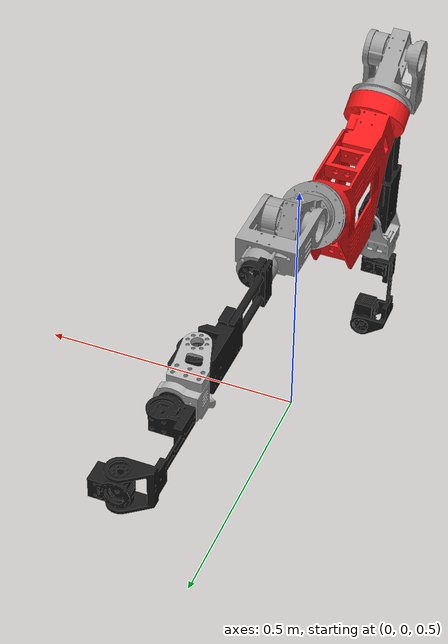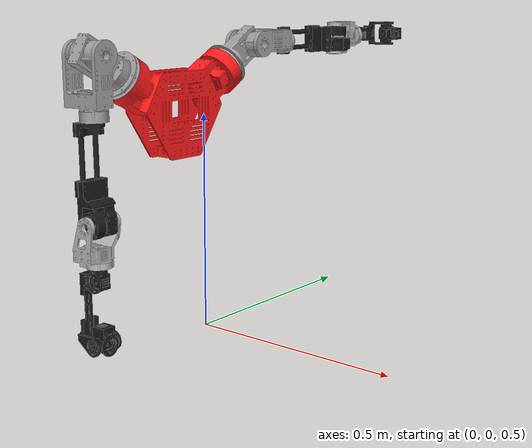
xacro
<?xml version="1.0"?>
<robot xmlns:xacro="http://www.ros.org/wiki/xacro" name="rx1">

  <link name="base_link"/>

  <joint name="torso_base_joint" type="fixed">
    <origin rpy="${-pi/2} 0 ${pi/2}" xyz="-0.08 -0.01 1.0"/>
    <parent link="base_link"/>
    <child link="torso_link"/>
  </joint>

  <xacro:include filename="$(find rx1_arm_description)/xacro/arm_assembly.xacro"/>

</robot>

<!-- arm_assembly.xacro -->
<robot
  name="rx1_arm_description">
  <link
    name="torso_link">
    <inertial>
      <origin
        xyz="0 0 0"
        rpy="0 0 0" />
      <mass
        value="1.34289684822909" />
      <inertia
        ixx="0.0021852497910165"
        ixy="3.17878121171959E-10"
        ixz="-1.17585955037938E-06"
        iyy="0.00327147535237094"
        iyz="4.88930871512921E-06"
        izz="0.00232430919464608" />
    </inertial>
    <visual>
      <origin
        xyz="-0.009 0.6 0.075"
        rpy="0 0 0" />
      <geometry>
        <mesh
          filename="package://rx1_arm_description/meshes/torso_link.STL" />
      </geometry>
      <material
        name="">
        <color
          rgba="1.0 0.1 0.1 1" />
      </material>
    </visual>
    <collision>
      <origin
        xyz="-0.009 0.6 0.075"
        rpy="0 0 0" />
      <geometry>
        <mesh
          filename="package://rx1_arm_description/meshes/torso_link.STL" />
      </geometry>
    </collision>
  </link>
  <link
    name="left_shoulder_link">
    <inertial>
      <origin
        xyz="0 0 0"
        rpy="0 0 0" />
      <mass
        value="0.288652258668412" />
      <inertia
        ixx="0.000234306504757691"
        ixy="6.23188375486991E-11"
        ixz="2.51948775434514E-10"
        iyy="0.000298837549514291"
        iyz="-2.52641885619247E-07"
        izz="0.000256307384405807" />
    </inertial>
    <visual>
      <origin
        xyz="-0.025 0.025 0"
        rpy="0 0 0" />
      <geometry>
        <mesh
          filename="package://rx1_arm_description/meshes/left_shoulder_link.STL" />
      </geometry>
      <material
        name="">
        <color
          rgba="0.627450980392157 0.627450980392157 0.627450980392157 1" />
      </material>
    </visual>
    <collision>
      <origin
        xyz="-0.025 0.025 0"
        rpy="0 0 0" />
      <geometry>
        <mesh
          filename="package://rx1_arm_description/meshes/left_shoulder_link.STL" />
      </geometry>
    </collision>
  </link>
  <joint
    name="left_shoulder_pitch_joint"
    type="revolute">
    <origin
      xyz="0.178 -0.097 -0.0005"
      rpy="1.5708 0 1.0472" />
    <parent
      link="torso_link" />
    <child
      link="left_shoulder_link" />
    <axis
      xyz="0 0 1" />
    <limit
      effort="1000.0"
      lower="${-pi/2}"
      upper="${pi/2}"
      velocity="0.5" />
    <dynamics
      damping="0.1"
      friction="0.1"/>
  </joint>
  <link
    name="left_upper_arm_link">
    <inertial>
      <origin
        xyz="0 0 0"
        rpy="0 0 0" />
      <mass
        value="0.283657187889463" />
      <inertia
        ixx="0.000345847189916072"
        ixy="7.7801725061108E-06"
        ixz="-1.66430316737486E-06"
        iyy="0.000109479989909252"
        iyz="-8.09234354553956E-07"
        izz="0.000361901057222866" />
    </inertial>
    <visual>
      <origin
        xyz="-0.05 0.05 0"
        rpy="0 0 0" />
      <geometry>
        <mesh
          filename="package://rx1_arm_description/meshes/left_upper_arm_link.STL" />
      </geometry>
      <material
        name="">
        <color
          rgba="0.627450980392157 0.627450980392157 0.627450980392157 1" />
      </material>
    </visual>
    <collision>
      <origin
        xyz="-0.05 0.05 0"
        rpy="0 0 0" />
      <geometry>
        <mesh
          filename="package://rx1_arm_description/meshes/left_upper_arm_link.STL" />
      </geometry>
    </collision>
  </link>
  <joint
    name="left_shoulder_yaw_joint"
    type="revolute">
    <origin
      xyz="0 0.025 0.095"
      rpy="1.5708 0 -3.1416" />
    <parent
      link="left_shoulder_link" />
    <child
      link="left_upper_arm_link" />
    <axis
      xyz="0 0 1" />
    <limit
      effort="1000.0"
      lower="${-pi-1.2217}"
      upper="-1.2217"
      velocity="0.5" />
    <dynamics
      damping="0.1"
      friction="0.1"/>
  </joint>
  <link
    name="left_elbow_base_link">
    <inertial>
      <origin
        xyz="0 0 0"
        rpy="0 0 0" />
      <mass
        value="0.293645502053592" />
      <inertia
        ixx="0.000191111221894673"
        ixy="9.45073347943987E-07"
        ixz="6.94481242792893E-06"
        iyy="0.000205123311133165"
        iyz="-9.68513388538593E-06"
        izz="0.000127099474277" />
    </inertial>
    <visual>
      <origin
        xyz="-0.05 0.05 -0.02"
        rpy="0 0 0" />
      <geometry>
        <mesh
          filename="package://rx1_arm_description/meshes/left_elbow_base_link.STL" />
      </geometry>
      <material
        name="">
        <color
          rgba="0.0980392156862745 0.0980392156862745 0.0980392156862745 1" />
      </material>
    </visual>
    <collision>
      <origin
        xyz="-0.05 0.05 -0.02"
        rpy="0 0 0" />
      <geometry>
        <mesh
          filename="package://rx1_arm_description/meshes/left_elbow_base_link.STL" />
      </geometry>
    </collision>
  </link>
  <joint
    name="left_shoulder_roll_joint"
    type="revolute">
    <origin
      xyz="0.0235 -0.135 -0.037"
      rpy="-1.5708 0 0.17453" />
    <parent
      link="left_upper_arm_link" />
    <child
      link="left_elbow_base_link" />
    <axis
      xyz="0 0 1" />
    <limit
      effort="1000.0"
      lower="${-pi/2}"
      upper="${pi/2}"
      velocity="0.5" />
    <dynamics
      damping="0.1"
      friction="0.1"/>
  </joint>
  <link
    name="left_forearm_link">
    <inertial>
      <origin
        xyz="0 0 0"
        rpy="0 0 0" />
      <mass
        value="0.159937221118175" />
      <inertia
        ixx="6.46854761819896E-05"
        ixy="8.07077989814206E-06"
        ixz="-2.44590352387659E-06"
        iyy="7.98080919568964E-05"
        iyz="2.15312738879161E-07"
        izz="0.000104932736677374" />
    </inertial>
    <visual>
      <origin
        xyz="-0.05 0.05 -0.02"
        rpy="0 0 0" />
      <geometry>
        <mesh
          filename="package://rx1_arm_description/meshes/left_forearm_link.STL" />
      </geometry>
      <material
        name="">
        <color
          rgba="0.701960784313725 0.701960784313725 0.701960784313725 1" />
      </material>
    </visual>
    <collision>
      <origin
        xyz="-0.05 0.05 -0.02"
        rpy="0 0 0" />
      <geometry>
        <mesh
          filename="package://rx1_arm_description/meshes/left_forearm_link.STL" />
      </geometry>
    </collision>
  </link>
  <joint
    name="left_elbow_joint"
    type="revolute">
    <origin
      xyz="-0.02 0 -0.225"
      rpy="-1.5708 ${-pi/2} -1.5708" />
    <parent
      link="left_elbow_base_link" />
    <child
      link="left_forearm_link" />
    <axis
      xyz="0 0 1" />
    <limit
      effort="1000.0"
      lower="${-pi/2}"
      upper="${pi/2}"
      velocity="0.5" />
    <dynamics
      damping="0.1"
      friction="0.1"/>
  </joint>
  <link
    name="left_forearm_pitch_link">
    <inertial>
      <origin
        xyz="0 0 0"
        rpy="0 0 0" />
      <mass
        value="0.119336418277092" />
      <inertia
        ixx="5.51743771905473E-05"
        ixy="3.92785306054048E-06"
        ixz="1.48441169125576E-06"
        iyy="6.48124552274375E-05"
        iyz="-1.1439972691833E-06"
        izz="7.22735369278745E-05" />
    </inertial>
    <visual>
      <origin
        xyz="0.035 0 -0.0125"
        rpy="0 0 0" />
      <geometry>
        <mesh
          filename="package://rx1_arm_description/meshes/left_forearm_pitch_link.STL" />
      </geometry>
      <material
        name="">
        <color
          rgba="0.0980392156862745 0.0980392156862745 0.0980392156862745 1" />
      </material>
    </visual>
    <collision>
      <origin
        xyz="0.035 0 -0.0125"
        rpy="0 0 0" />
      <geometry>
        <mesh
          filename="package://rx1_arm_description/meshes/left_forearm_pitch_link.STL" />
      </geometry>
    </collision>
  </link>
  <joint
    name="left_forearm_roll_joint"
    type="revolute">
    <origin
      xyz="-0.09 0 0.0155"
      rpy="0 0 3.1416" />
    <parent
      link="left_forearm_link" />
    <child
      link="left_forearm_pitch_link" />
    <axis
      xyz="1 0 0" />
    <limit
      effort="1000.0"
      lower="${-pi/2}"
      upper="${pi/2}"
      velocity="0.5" />
    <dynamics
      damping="0.1"
      friction="0.1"/>
  </joint>
  <link
    name="left_forearm_roll_link">
    <inertial>
      <origin
        xyz="-4.59996454264533E-05 -0.0106209900521888 0.0122467252479195"
        rpy="0 0 0" />
      <mass
        value="0.0744709825981583" />
      <inertia
        ixx="2.47652817135528E-05"
        ixy="7.93488038079891E-11"
        ixz="2.30729859217063E-10"
        iyy="1.9982959754195E-05"
        iyz="-8.59225034352214E-07"
        izz="3.07032565952786E-05" />
    </inertial>
    <visual>
      <origin
        xyz="0 0 -0.0125"
        rpy="0 0 0" />
      <geometry>
        <mesh
          filename="package://rx1_arm_description/meshes/left_forearm_roll_link.STL" />
      </geometry>
      <material
        name="">
        <color
          rgba="0.0980392156862745 0.0980392156862745 0.0980392156862745 1" />
      </material>
    </visual>
    <collision>
      <origin
        xyz="0 0 0"
        rpy="0 0 0" />
      <geometry>
        <mesh
          filename="package://rx1_arm_description/meshes/left_forearm_roll_link.STL" />
      </geometry>
    </collision>
  </link>
  <joint
    name="left_forearm_pitch_joint"
    type="revolute">
    <origin
      xyz="0.175 0 0.002"
      rpy="${pi} 1.5708 0" />
    <parent
      link="left_forearm_pitch_link" />
    <child
      link="left_forearm_roll_link" />
    <axis
      xyz="1 0 0" />
    <limit
      effort="1000.0"
      lower="${-pi/4}"
      upper="${pi/4}"
      velocity="0.5" />
    <dynamics
      damping="0.1"
      friction="0.1"/>
  </joint>

  <link
    name="right_shoulder_link">
    <inertial>
      <origin
        xyz="0 0 0"
        rpy="0 0 0" />
      <mass
        value="0.241078385573073" />
      <inertia
        ixx="0.000212462211234769"
        ixy="-1.39271526133161E-06"
        ixz="2.13127282918627E-10"
        iyy="0.000268277812827925"
        iyz="3.67630787278507E-11"
        izz="0.000240397238836167" />
    </inertial>
    <visual>
      <origin
        xyz="-0.0498 0.050 0.0185"
        rpy="0 0 0" />
      <geometry>
        <mesh
          filename="package://rx1_arm_description/meshes/right_shoulder_link.STL" />
      </geometry>
      <material name="">
        <color rgba="0.627450980392157 0.627450980392157 0.627450980392157 1" />
      </material>
    </visual>
    <collision>
      <origin
        xyz="-0.0498 0.050 0.0185"
        rpy="0 0 0" />
      <geometry>
        <mesh
          filename="package://rx1_arm_description/meshes/right_shoulder_link.STL" />
      </geometry>
    </collision>
  </link>
  <joint
    name="right_shoulder_pitch_joint"
    type="revolute">
    <origin
      xyz="-0.154 -0.0825 -0.0005"
      rpy="1.5708 0 -1.0472" />
    <parent
      link="torso_link" />
    <child
      link="right_shoulder_link" />
    <axis
      xyz="0 0 1" />
    <limit
      effort="1000.0"
      lower="${-pi/2}"
      upper="${pi/2}"
      velocity="0.5" />
    <dynamics
      damping="0.1"
      friction="0.1"/>
  </joint>
  <link
    name="right_upper_arm_link">
    <inertial>
      <origin
        xyz="0 0 0"
        rpy="0 0 0" />
      <mass
        value="0.276361335782325" />
      <inertia
        ixx="0.000340747739679373"
        ixy="3.35254394472819E-05"
        ixz="-1.77533536363304E-06"
        iyy="0.000113409462339347"
        iyz="4.57924276177876E-07"
        izz="0.000361341150702589" />
    </inertial>
    <visual>
      <origin
        xyz="-0.05 0.05 0"
        rpy="0 0 0" />
      <geometry>
        <mesh
          filename="package://rx1_arm_description/meshes/right_upper_arm_link.STL" />
      </geometry>
      <material
        name="">
        <color
          rgba="0.627450980392157 0.627450980392157 0.627450980392157 1" />
      </material>
    </visual>
    <collision>
      <origin
        xyz="-0.05 0.05 0"
        rpy="0 0 0" />
      <geometry>
        <mesh
          filename="package://rx1_arm_description/meshes/right_upper_arm_link.STL" />
      </geometry>
    </collision>
  </link>
  <joint
    name="right_shoulder_yaw_joint"
    type="revolute">
    <origin
      xyz="0 0.025 0.1213"
      rpy="-1.5708 1.0472 0.024932" />
    <parent
      link="right_shoulder_link" />
    <child
      link="right_upper_arm_link" />
    <axis
      xyz="0 0 1" />
    <limit
      effort="1000.0"
      lower="${pi}"
      upper="0"
      velocity="0.5" />
    <dynamics
      damping="0.1"
      friction="0.1"/>
    </joint>
  <link
    name="right_elbow_base_link">
    <inertial>
      <origin
        xyz="0 0 0"
        rpy="0 0 0" />
      <mass
        value="0.294022438354874" />
      <inertia
        ixx="0.000191113243166891"
        ixy="-7.11355737126455E-07"
        ixz="-7.17855383108209E-06"
        iyy="0.000215190065240535"
        iyz="-9.68491463451935E-06"
        izz="0.000117048837218324" />
    </inertial>
    <visual>
      <origin
        xyz="-0.05 0.05 -0.02"
        rpy="0 0 0" />
      <geometry>
        <mesh
          filename="package://rx1_arm_description/meshes/right_elbow_base_link.STL" />
      </geometry>
      <material
        name="">
        <color
          rgba="0.0980392156862745 0.0980392156862745 0.0980392156862745 1" />
      </material>
    </visual>
    <collision>
      <origin
        xyz="-0.05 0.05 -0.02"
        rpy="0 0 0" />
      <geometry>
        <mesh
          filename="package://rx1_arm_description/meshes/right_elbow_base_link.STL" />
      </geometry>
    </collision>
  </link>
  <joint
    name="right_shoulder_roll_joint"
    type="revolute">
    <origin
      xyz="0 0.135 -0.037"
      rpy="-1.5708 0 -3.1416" />
    <parent
      link="right_upper_arm_link" />
    <child
      link="right_elbow_base_link" />
    <axis
      xyz="0 0 1" />
    <limit
      effort="1000.0"
      lower="${-pi/2}"
      upper="${pi/2}"
      velocity="0.5" />
    <dynamics
      damping="0.1"
      friction="0.1"/>
  </joint>
  <link
    name="right_forearm_link">
    <inertial>
      <origin
        xyz="0 0 0"
        rpy="0 0 0" />
      <mass
        value="0.159937357061386" />
      <inertia
        ixx="6.46855176197894E-05"
        ixy="8.07077158024439E-06"
        ixz="2.44576568345528E-06"
        iyy="7.98080909205345E-05"
        iyz="-2.14722205358431E-07"
        izz="0.000104932776106174" />
    </inertial>
    <visual>
      <origin
        xyz="-0.05 0.05 0.02"
        rpy="0 0 0" />
      <geometry>
        <mesh
          filename="package://rx1_arm_description/meshes/right_forearm_link.STL" />
      </geometry>
      <material
        name="">
        <color
          rgba="0.701960784313725 0.701960784313725 0.701960784313725 1" />
      </material>
    </visual>
    <collision>
      <origin
        xyz="-0.05 0.05 0.02"
        rpy="0 0 0" />
      <geometry>
        <mesh
          filename="package://rx1_arm_description/meshes/right_forearm_link.STL" />
      </geometry>
    </collision>
  </link>
  <joint
    name="right_elbow_joint"
    type="revolute">
    <origin
      xyz="0.02 0 -0.225"
      rpy="-1.5708 ${-pi/2} -1.5708" />
    <parent
      link="right_elbow_base_link" />
    <child
      link="right_forearm_link" />
    <axis
      xyz="0 0 1" />
    <limit
      effort="1000.0"
      lower="${pi/2}"
      upper="${-pi/2}"
      velocity="0.5" />
    <dynamics
      damping="0.1"
      friction="0.1"/>
  </joint>
  <link
    name="right_forearm_pitch_link">
    <inertial>
      <origin
        xyz="0 0 0"
        rpy="0 0 0" />
      <mass
        value="0.119336447852501" />
      <inertia
        ixx="5.5174396893135E-05"
        ixy="3.92794939138855E-06"
        ixz="-1.4841399716682E-06"
        iyy="6.48124631446172E-05"
        iyz="1.14403477595069E-06"
        izz="7.22735525494739E-05" />
    </inertial>
    <visual>
      <origin
        xyz="0.035 0 0.0125"
        rpy="0 0 0" />
      <geometry>
        <mesh
          filename="package://rx1_arm_description/meshes/right_forearm_pitch_link.STL" />
      </geometry>
      <material
        name="">
        <color
          rgba="0.0980392156862745 0.0980392156862745 0.0980392156862745 1" />
      </material>
    </visual>
    <collision>
      <origin
        xyz="0 0 0"
        rpy="0 0 0" />
      <geometry>
        <mesh
          filename="package://rx1_arm_description/meshes/right_forearm_pitch_link.STL" />
      </geometry>
    </collision>
  </link>
  <joint
    name="right_forearm_roll_joint"
    type="revolute">
    <origin
      xyz="-0.09 0 -0.0155"
      rpy="0 0 -3.1416" />
    <parent
      link="right_forearm_link" />
    <child
      link="right_forearm_pitch_link" />
    <axis
      xyz="1 0 0" />
    <limit
      effort="1000.0"
      lower="${-pi/2}"
      upper="${pi/2}"
      velocity="0.5" />
    <dynamics
      damping="0.1"
      friction="0.1"/>
  </joint>
  <link
    name="right_forearm_roll_link">
    <inertial>
      <origin
        xyz="0 0 0"
        rpy="0 0 0" />
      <mass
        value="0.076585392847017" />
      <inertia
        ixx="2.5241632736512E-05"
        ixy="1.81438863760255E-10"
        ixz="4.43189908448262E-11"
        iyy="2.05016068240719E-05"
        iyz="8.63779845937977E-07"
        izz="3.16946939480451E-05" />
    </inertial>
    <visual>
      <origin
        xyz="0 0 0.02"
        rpy="0 0 0" />
      <geometry>
        <mesh
          filename="package://rx1_arm_description/meshes/right_forearm_roll_link.STL" />
      </geometry>
      <material
        name="">
        <color
          rgba="0.0980392156862745 0.0980392156862745 0.0980392156862745 1" />
      </material>
    </visual>
    <collision>
      <origin
        xyz="0 0 0.02"
        rpy="0 0 0" />
      <geometry>
        <mesh
          filename="package://rx1_arm_description/meshes/right_forearm_roll_link.STL" />
      </geometry>
    </collision>
  </link>
  <joint
    name="right_forearm_pitch_joint"
    type="revolute">
    <origin
      xyz="0.175 0 -0.002"
      rpy="-1.5708 -1.5708 0" />
    <parent
      link="right_forearm_pitch_link" />
    <child
      link="right_forearm_roll_link" />
    <axis
      xyz="1 0 0" />
    <limit
      effort="1000.0"
      lower="${-pi/4}"
      upper="${pi/4}"
      velocity="0.5" />
    <dynamics
      damping="0.1"
      friction="0.1"/>
  </joint>
</robot>
